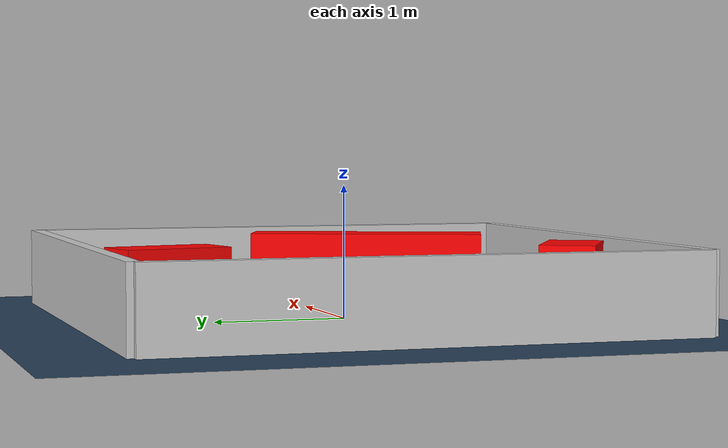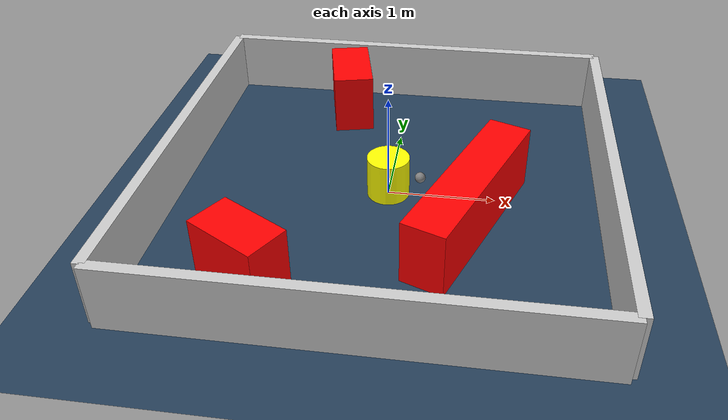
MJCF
<?xml version="1.0" ?>
<mujoco model="generated_environment">
  <option timestep="0.01" integrator="RK4" cone="elliptic"/>
  <default>
    <geom density="1"/>
  </default>
  <asset>
    <texture builtin="gradient" height="3072" rgb1="0.3 0.5 0.7" rgb2="0 0 0" type="skybox" width="512"/>
    <texture builtin="checker" height="300" mark="edge" markrgb="0.8 0.8 0.8" name="groundplane" rgb1="0.2 0.3 0.4" rgb2="0.1 0.2 0.3" type="2d" width="300"/>
    <material name="groundplane" reflectance="0.2" texrepeat="5 5" texture="groundplane" texuniform="true"/>
    <material name="robot" rgba="0.0 1.0 0.0 1"/>
  </asset>
  <worldbody>
    <light dir="0 0 -1" directional="true" pos="0 0 1.5"/>
    <geom condim="4" friction="1.0 0.005 0.001" material="groundplane" name="floor" size="0 0 0.05" type="plane"/>
    <body name="walls">
      <geom name="wall_1" condim="4" pos="-2.0 0.0 0.3" rgba="0.800000011920929 0.800000011920929 0.800000011920929 1.0" size="0.05 2.0 0.3" type="box"/>
      <geom name="wall_2" condim="4" pos="2.0 0.0 0.3" rgba="0.800000011920929 0.800000011920929 0.800000011920929 1.0" size="0.05 2.0 0.3" type="box"/>
      <geom name="wall_3" condim="4" pos="0.0 -2.0 0.3" rgba="0.800000011920929 0.800000011920929 0.800000011920929 1.0" size="2.0 0.05 0.3" type="box"/>
      <geom name="wall_4" condim="4" pos="0.0 2.0 0.3" rgba="0.800000011920929 0.800000011920929 0.800000011920929 1.0" size="2.0 0.05 0.3" type="box"/>
    </body>
    <body name="robot">
      <joint name="joint_x" type="slide" pos="0 0 0" axis="1 0 0"/>
      <joint name="joint_y" type="slide" pos="0 0 0" axis="0 1 0"/>
      <geom name="robot" type="sphere" pos="0.3 0.0 0.2" size="0.05" mass="5." friction="1.0 0.005 0.0001" condim="4" rgba="0.5 0.5 0.5 1.0"/>
      <site name="sensor_ball"/>
    </body>
    <body name="obstacle_movable_1">
      <geom name="obstacle_movable_1" condim="4" pos="0.0 0.0 0.2" euler="0 0 0.0" friction="1.0 0.005 0.001" rgba="1.0 1.0 0.0 1.0" size="0.2 0.2 0.0" type="cylinder" mass="0.1"/>
      <joint type="free"/>
    </body>
    <body name="obstacle_2_static">
      <geom name="obstacle_2_static" condim="4" pos="-0.9957448773169147 -1.4112659205028537 0.3" euler="0 0 329.58532361338547" friction="1.0 0.005 0.001" rgba="1 0 0 1" size="0.34699568269268727 0.2 0.3" type="box"/>
    </body>
    <body name="obstacle_3_static">
      <geom name="obstacle_3_static" condim="4" pos="0.768534505305039 -0.4384255189285402 0.3" euler="0 0 248.60679806288783" friction="1.0 0.005 0.001" rgba="1 0 0 1" size="0.9077851941527295 0.2 0.3" type="box"/>
    </body>
    <body name="obstacle_4_static">
      <geom name="obstacle_4_static" condim="4" pos="-0.6018063583258042 1.4780234053665364 0.3" euler="0 0 103.22077772296346" friction="1.0 0.005 0.001" rgba="1 0 0 1" size="0.3919494278553329 0.2 0.3" type="box"/>
    </body>
  </worldbody>
  <actuator>
    <motor name="actuator_x" joint="joint_x" gear="1" ctrlrange="-1 1"/>
    <motor name="actuator_y" joint="joint_y" gear="1" ctrlrange="-1 1"/>
  </actuator>
</mujoco>
